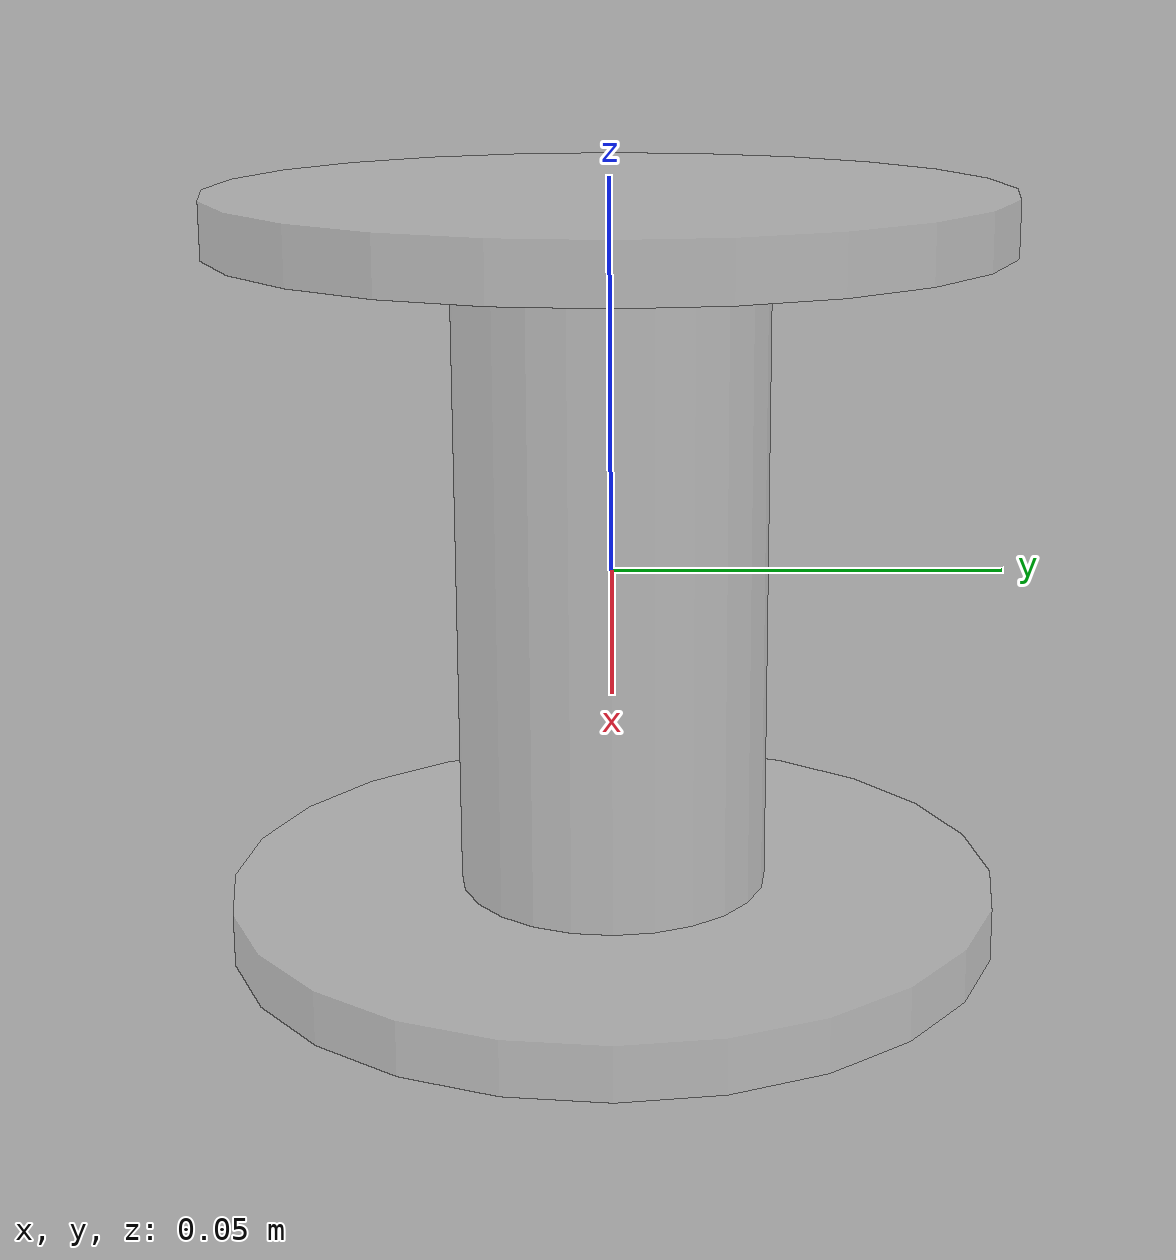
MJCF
<mujoco model="dumbbell-visual">
  <worldbody>
    <body>

      <body name="object">
        <geom pos="0 0 0" size="0.02 0.045" type="cylinder" conaffinity="0" contype="0" group="1" mass="0.0001" rgba="0.8 0.8 0.8 0.3"/>
        <geom pos="0 0 0.045" size="0.05 0.0035" type="cylinder" conaffinity="0" contype="0" group="1" mass="0.0001" rgba="0.8 0.8 0.8 0.3"/>
        <geom pos="0 0 -0.045" size="0.05 0.0035" type="cylinder" conaffinity="0" contype="0" group="1" mass="0.0001" rgba="0.8 0.8 0.8 0.3"/>
      </body>

      <site rgba="0 0 0 0" size="0.001" pos="0.0 0.0 -0.052" name="bottom_site"/>
      <site rgba="0 0 0 0" size="0.001" pos="0.0 0.0 0.052" name="top_site"/>
      <site rgba="0 0 0 0" size="0.001" pos="0.05 0 0" name="horizontal_radius_site"/>
    </body>
  </worldbody>
</mujoco>
